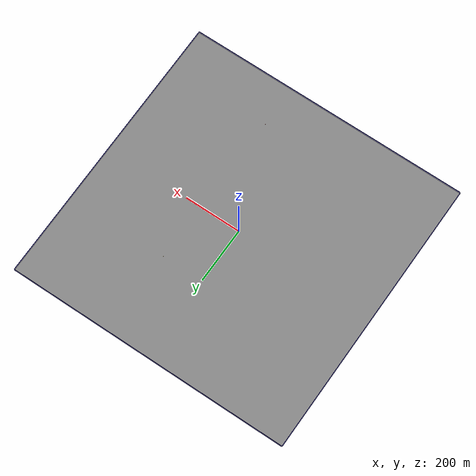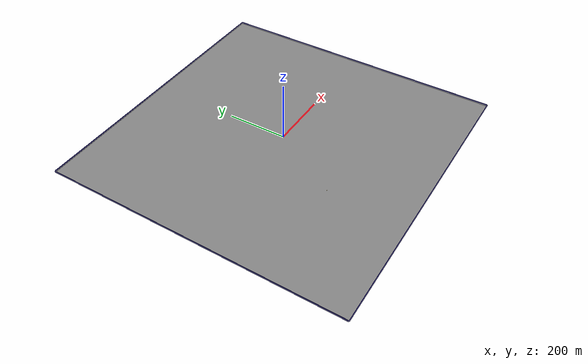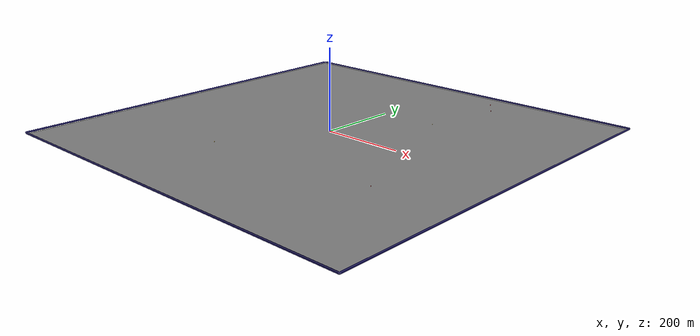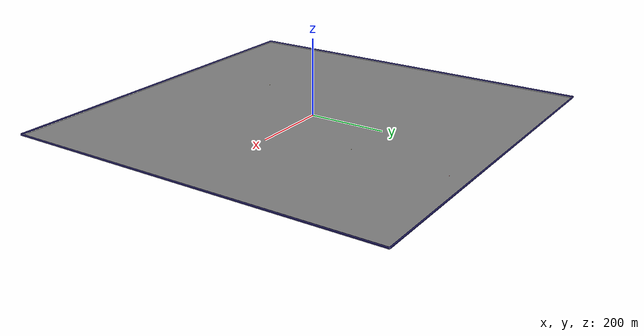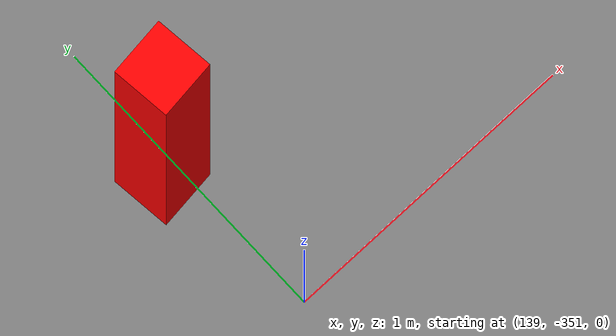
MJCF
<mujoco model="unnamed_model">
  <default>
    <default class="/" />
    <default class="border/" />
    <default class="border_1/" />
    <default class="border_2/" />
    <default class="border_3/" />
    <default class="agentplaceholder/" />
    <default class="placeholder_box/" />
    <default class="stone0/" />
    <default class="stone1/" />
    <default class="tree/" />
    <default class="tree_1/" />
  </default>
  <worldbody>
    <body name="border/">
      <body name="border/border" pos="0 501 2">
        <geom name="border/border_geom" class="border/" type="box" size="500 1 2" rgba="0.035000000000000003 0.016 0.28999999999999998 1" />
      </body>
    </body>
    <body name="border_1/">
      <body name="border_1/border" pos="0 -501 2">
        <geom name="border_1/border_geom" class="border_1/" type="box" size="500 1 2" rgba="0.035000000000000003 0.016 0.28999999999999998 1" />
      </body>
    </body>
    <body name="border_2/">
      <body name="border_2/border" pos="501 0 2">
        <geom name="border_2/border_geom" class="border_2/" type="box" size="1 500 2" rgba="0.035000000000000003 0.016 0.28999999999999998 1" />
      </body>
    </body>
    <body name="border_3/">
      <body name="border_3/border" pos="-501 0 2">
        <geom name="border_3/border_geom" class="border_3/" type="box" size="1 500 2" rgba="0.035000000000000003 0.016 0.28999999999999998 1" />
      </body>
    </body>
    <body euler="0 0 -125.59805079435293" name="agentplaceholder/">
      <joint name="agentplaceholder/boxagent_freeJoint/" class="/" type="free" />
      <body name="agentplaceholder/agentplaceholder" pos="-250 0 3" euler="0 0 0">
        <geom name="agentplaceholder/boxagent_geom" class="agentplaceholder/" type="box" size="0.5 0.5 0.5" rgba="0.94899999999999995 0.74509999999999998 0.1333 1" euler="0 0 0" />
      </body>
    </body>
    <body name="placeholder_box/">
      <body name="placeholder_box/placeholder_box" pos="-135.77705000000003 -235.46910000000003 0.5" euler="0 0 -177.87337272091395">
        <geom name="placeholder_box/box_geom" class="placeholder_box/" type="box" size="0.5 0.5 0.5" rgba="0.94899999999999995 0.74509999999999998 0.1333 1" euler="0 0 0" />
      </body>
    </body>
    <body name="stone0/">
      <body name="stone0/stone0" pos="138.94589999999999 -350.44189999999998 0.10000000000000001" euler="0 0 -83.347000344067709">
        <geom name="stone0/stone_geom" class="stone0/" type="box" size="0.10000000000000001 0.10000000000000001 2" rgba="1 0 0 1" />
      </body>
    </body>
    <body name="stone1/">
      <body name="stone1/stone1" pos="295.73264999999998 -192.77610000000004 0.10000000000000001" euler="0 0 -133.69251201069977">
        <geom name="stone1/stone_geom" class="stone1/" type="box" size="0.10000000000000001 0.10000000000000001 2" rgba="1 0 0 1" />
      </body>
    </body>
    <body name="tree/">
      <body name="tree/tree" pos="147.92085 449.02760000000001 0.10000000000000001" euler="0 0 -142.54532806371299">
        <geom name="tree/tree_geom" class="tree/" type="box" size="0.10000000000000001 0.10000000000000001 2" rgba="1 0 0 1" />
      </body>
    </body>
    <body name="tree_1/">
      <body name="tree_1/tree" pos="178.32380000000001 405.33400000000006 0.10000000000000001" euler="0 0 -103.09504440338058">
        <geom name="tree_1/tree_geom" class="tree_1/" type="box" size="0.10000000000000001 0.10000000000000001 2" rgba="1 0 0 1" />
      </body>
    </body>
    <geom name="base_plane" class="/" type="plane" size="500 500 0.10000000000000001" />
  </worldbody>
</mujoco>
